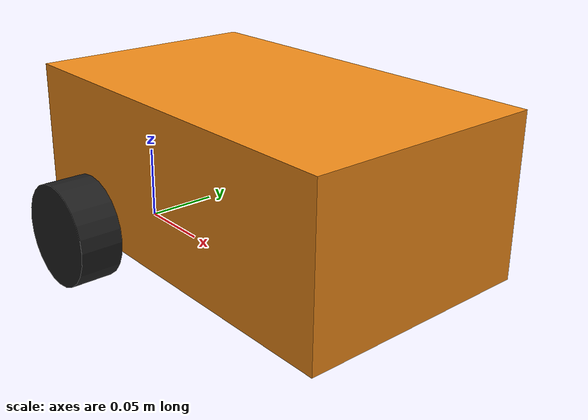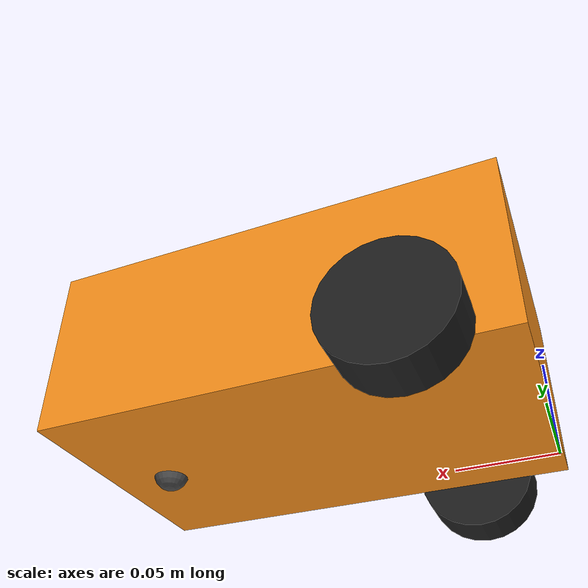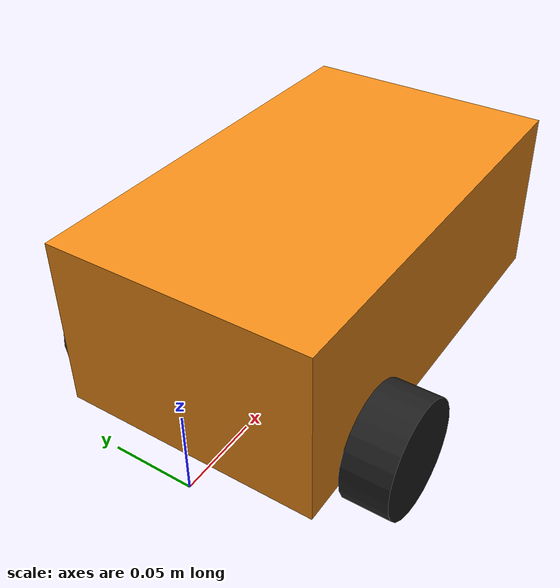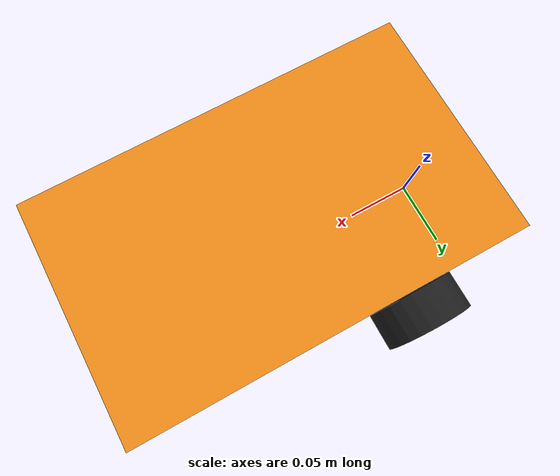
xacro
<?xml version="1.0"?>
<robot xmlns:xacro="http://www.ros.org/wiki/xacro" >

    <xacro:include filename="inertial_macros.xacro"/>

    <xacro:property name="chassis_length" value="0.250"/>
    <xacro:property name="chassis_width" value="0.150"/>
    <xacro:property name="chassis_height" value="0.1"/>
    <xacro:property name="chassis_mass" value="1.85"/>
    <xacro:property name="wheel_radius" value="0.0325"/>
    <xacro:property name="wheel_thickness" value="0.027"/>
    <xacro:property name="wheel_mass" value="0.05"/>
    <xacro:property name="wheel_offset_x" value="0"/>
    <xacro:property name="wheel_offset_y" value="0"/>
    <xacro:property name="wheel_offset_z" value="0.025"/>
    <xacro:property name="caster_wheel_radius" value="0.01"/>
    <xacro:property name="caster_wheel_mass" value="0.031"/>
    <xacro:property name="caster_wheel_offset_x" value="0.215"/>
    <xacro:property name="caster_wheel_offset_z" value="${wheel_offset_z - wheel_radius + caster_wheel_radius}"/>

    <material name="white">
        <color rgba="1 1 1 1" />
    </material>

    <material name="orange">
        <color rgba="1 0.3 0.1 1"/>
    </material>

    <material name="blue">
        <color rgba="0.2 0.2 1 1"/>
    </material>

    <material name="black">
        <color rgba="0 0 0 1"/>
    </material>

    <material name="red">
        <color rgba="1 0 0 1"/>
    </material>

    <!-- BASE LINK -->

    <link name="base_link">

    </link>

    <!-- BASE_FOOTPRINT LINK -->

    <joint name="base_footprint_joint" type="fixed">
        <parent link="base_link"/>
        <child link="base_footprint"/>
        <origin xyz="0 0 0" rpy="0 0 0"/>
    </joint>

    <link name="base_footprint">
    </link>

    <!-- Chassis link -->
    <joint name="chassis_joint" type="fixed">
        <parent link="base_link"/>
        <child link="chassis_link"/>
        <origin xyz="${wheel_offset_x} 0 ${wheel_offset_z}"/>
    </joint>

    <link name="chassis_link">
        <visual>
            <origin xyz="${chassis_length/2} 0 ${chassis_height/2}"/>
            <geometry>
                <box size="${chassis_length} ${chassis_width} ${chassis_height}"/>
            </geometry>
        </visual>
        <collision>
            <origin xyz="${chassis_length/2} 0 ${chassis_height/2}"/>
            <geometry>
                <box size="${chassis_length} ${chassis_width} ${chassis_height}"/>
            </geometry>
        </collision>
        <xacro:inertial_box mass="0.5" x="${chassis_length}" y="${chassis_width}" z="${chassis_height}">
          <origin xyz="${chassis_length/2} 0 ${chassis_height/2}" rpy="0 0 0"/>
        </xacro:inertial_box>
    </link>
    <gazebo reference="chassis_link">
      <material>Gazebo/Orange</material>
    </gazebo>

<!--< right wheel -->

    <joint name="right_wheel_joint" type="continuous">
        <parent link="base_link"/>
        <child link="right_wheel_link"/>
        <origin xyz="0.053 -0.09 ${wheel_offset_z+0.008}" rpy="-${pi/2} 0 0" />
        <axis xyz="0 0 1"/>
    </joint>
    <link name="right_wheel_link">
        <visual>
            <geometry>
                <cylinder radius="${wheel_radius}" length="${wheel_thickness}"/>
            </geometry>
        </visual>
        <collision>
            <geometry>
                <sphere radius="${wheel_radius}"/>
            </geometry>
        </collision>
        <xacro:inertial_cylinder mass="${wheel_mass}" length="${wheel_thickness}" radius="${wheel_radius}">
          <origin xyz="0 0 0" rpy="0 0 0"/>
        </xacro:inertial_cylinder>
    </link>
    <gazebo reference="right_wheel_link">
      <material>Gazebo/Black</material>
    </gazebo>

    <!-- left wheel -->

    <joint name="left_wheel_joint" type="continuous">
        <parent link="base_link"/>
        <child link="left_wheel_link"/>
        <origin xyz="0.053 0.09 ${wheel_offset_z+0.008}" rpy="${pi/2} 0 0" />
        <axis xyz="0 0 -1"/>
    </joint>

    <link name="left_wheel_link">
        <visual>
            <geometry>
                <cylinder radius="${wheel_radius}" length="${wheel_thickness}"/>
            </geometry>
        </visual>
        <collision>
            <geometry>
                <sphere radius="${wheel_radius}"/>
            </geometry>
        </collision>
        <xacro:inertial_cylinder mass="${wheel_mass}" length="${wheel_thickness}" radius="${wheel_radius}">
            <origin xyz="0 0 0" rpy="0 0 0"/>
        </xacro:inertial_cylinder>
    </link>
    <gazebo reference="left_wheel_link">
      <material>Gazebo/Black</material>
    </gazebo>

<!-- caster_wheel_link -->
    <joint name="caster_wheel_joint" type="fixed">
        <parent link="chassis_link" />
        <child link="caster_wheel_link" />
        <origin xyz="${caster_wheel_offset_x} 0 ${caster_wheel_offset_z}"/>
    </joint>
    <link name="caster_wheel_link">
        <visual>
            <origin
                xyz="0 0 0"
                rpy="0 0 0" />
            <geometry>
                <sphere radius="${caster_wheel_radius}"/>
            </geometry>
        </visual>
        <collision>
            <origin
                xyz="0 0 0"
                rpy="0 0 0" />
            <geometry>
                <sphere radius="${caster_wheel_radius+0.02}"/>
            </geometry>
        </collision>
        <xacro:inertial_sphere mass="${caster_wheel_mass}" radius="${caster_wheel_radius}">
            <origin xyz="0 0 0" rpy="0 0 0"/>
        </xacro:inertial_sphere>
    </link>
    <gazebo reference="caster_wheel_link">
        <material>Gazebo/DarkGray</material>
        <mu1 value="0.001"/>
        <mu2 value="0.001"/>
    </gazebo>

</robot>
